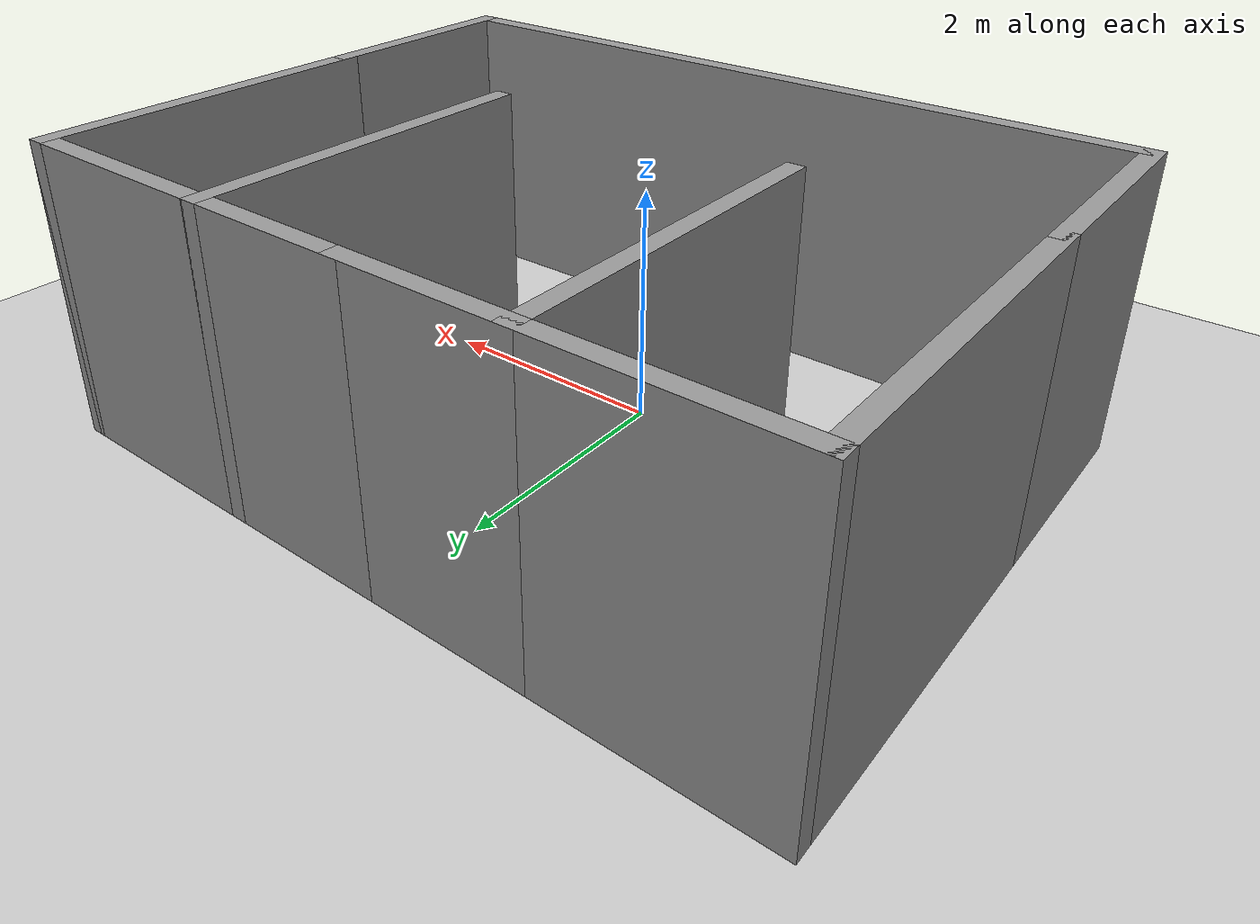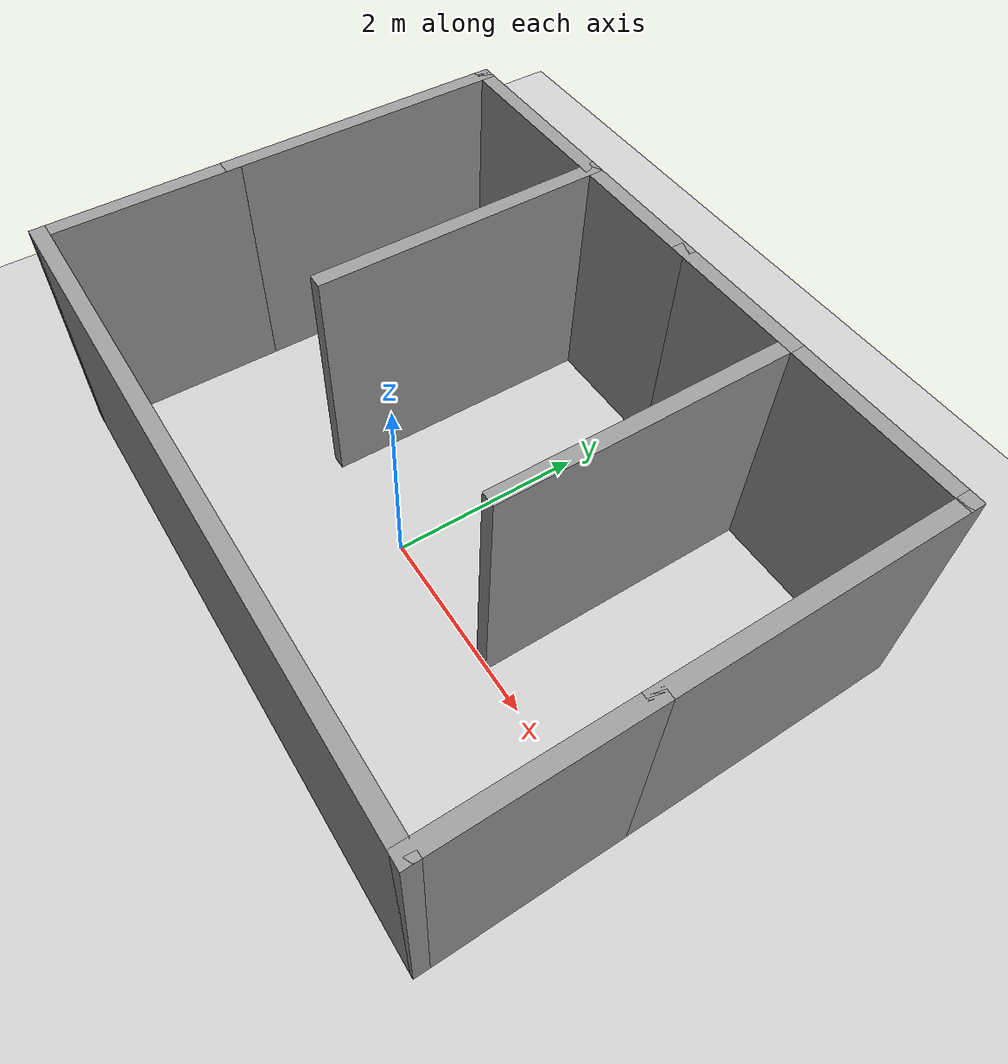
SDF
<sdf version="1.6">
 <world name="default">
  <light name="sun" type="directional">
   <pose>0 0 10 0 -0 0</pose>
   <diffuse>0.8 0.8 0.8 1</diffuse>
   <specular>0.2 0.2 0.2 1</specular>
   <attenuation>
    <range>1000</range>
    <constant>0.9</constant>
    <linear>0.01</linear>
    <quadratic>0.001</quadratic>
   </attenuation>
   <direction>-0.5 0.1 -0.9</direction>
  </light>
  <model name="ground_plane">
   <static>1</static>
   <link name="link">
    <collision name="collision">
     <geometry><plane><normal>0 0 1</normal><size>100 100</size></plane></geometry>
     <surface>
      <contact><collide_bitmask>65535</collide_bitmask></contact>
      <friction><ode><mu>100</mu><mu2>50</mu2></ode></friction>
     </surface>
    </collision>
    <visual name="visual">
     <cast_shadows>0</cast_shadows>
     <geometry><plane><normal>0 0 1</normal><size>100 100</size></plane></geometry>
     <material>
      <script><uri>file://media/materials/scripts/gazebo.material</uri><name>Gazebo/Grey</name></script>
     </material>
    </visual>
   </link>
  </model>
  <gravity>0 0 -9.8</gravity>
  <magnetic_field>6e-06 2.3e-05 -4.2e-05</magnetic_field>
  <atmosphere type="adiabatic"/>
  <physics name="default_physics" default="0" type="ode">
   <max_step_size>0.001</max_step_size>
   <real_time_factor>1</real_time_factor>
   <real_time_update_rate>1000</real_time_update_rate>
  </physics>
  <scene><ambient>0.4 0.4 0.4 1</ambient><background>0.7 0.7 0.7 1</background><shadows>1</shadows></scene>
  <spherical_coordinates>
   <surface_model>EARTH_WGS84</surface_model>
   <latitude_deg>0</latitude_deg>
   <longitude_deg>0</longitude_deg>
   <elevation>0</elevation>
   <heading_deg>0</heading_deg>
  </spherical_coordinates>
  <model name="wall.world">
   <pose>0.1 0.56 0 0 -0 0</pose>
   <link name="Wall_11">
    <collision name="Wall_11_Collision">
     <geometry><box><size>1.5 0.15 2.5</size></box></geometry>
     <pose>0 0 1.25 0 -0 0</pose>
    </collision>
    <visual name="Wall_11_Visual">
     <pose>0 0 1.25 0 -0 0</pose>
     <geometry><box><size>1.5 0.15 2.5</size></box></geometry>
     <material>
      <script><uri>file://media/materials/scripts/gazebo.material</uri><name>Gazebo/Grey</name></script>
      <ambient>1 1 1 1</ambient>
     </material>
     <meta><layer>0</layer></meta>
    </visual>
    <pose>-0.675 2.35 0 0 -0 3.14159</pose>
   </link>
   <link name="Wall_12">
    <collision name="Wall_12_Collision">
     <geometry><box><size>3 0.15 2.5</size></box></geometry>
     <pose>0 0 1.25 0 -0 0</pose>
    </collision>
    <visual name="Wall_12_Visual">
     <pose>0 0 1.25 0 -0 0</pose>
     <geometry><box><size>3 0.15 2.5</size></box></geometry>
     <material>
      <script><uri>file://media/materials/scripts/gazebo.material</uri><name>Gazebo/Grey</name></script>
      <ambient>1 1 1 1</ambient>
     </material>
     <meta><layer>0</layer></meta>
    </visual>
    <pose>-1.35 0.925 0 0 -0 -1.5708</pose>
   </link>
   <link name="Wall_14">
    <collision name="Wall_14_Collision">
     <geometry><box><size>1.5 0.15 2.5</size></box></geometry>
     <pose>0 0 1.25 0 -0 0</pose>
    </collision>
    <visual name="Wall_14_Visual">
     <pose>0 0 1.25 0 -0 0</pose>
     <geometry><box><size>1.5 0.15 2.5</size></box></geometry>
     <material>
      <script><uri>file://media/materials/scripts/gazebo.material</uri><name>Gazebo/Grey</name></script>
      <ambient>1 1 1 1</ambient>
     </material>
     <meta><layer>0</layer></meta>
    </visual>
    <pose>0.675 2.35 0 0 -0 0</pose>
   </link>
   <link name="Wall_15">
    <collision name="Wall_15_Collision">
     <geometry><box><size>3 0.15 2.5</size></box></geometry>
     <pose>0 0 1.25 0 -0 0</pose>
    </collision>
    <visual name="Wall_15_Visual">
     <pose>0 0 1.25 0 -0 0</pose>
     <geometry><box><size>3 0.15 2.5</size></box></geometry>
     <material>
      <script><uri>file://media/materials/scripts/gazebo.material</uri><name>Gazebo/Grey</name></script>
      <ambient>1 1 1 1</ambient>
     </material>
     <meta><layer>0</layer></meta>
    </visual>
    <pose>1.35 0.925 0 0 -0 -1.5708</pose>
   </link>
   <link name="Wall_17">
    <collision name="Wall_17_Collision">
     <geometry><box><size>2 0.15 2.5</size></box></geometry>
     <pose>0 0 1.25 0 -0 0</pose>
    </collision>
    <visual name="Wall_17_Visual">
     <pose>0 0 1.25 0 -0 0</pose>
     <geometry><box><size>2 0.15 2.5</size></box></geometry>
     <material>
      <script><uri>file://media/materials/scripts/gazebo.material</uri><name>Gazebo/Grey</name></script>
      <ambient>1 1 1 1</ambient>
     </material>
     <meta><layer>0</layer></meta>
    </visual>
    <pose>2.275 2.35 0 0 -0 0</pose>
   </link>
   <link name="Wall_18">
    <collision name="Wall_18_Collision">
     <geometry><box><size>3 0.15 2.5</size></box></geometry>
     <pose>0 0 1.25 0 -0 0</pose>
    </collision>
    <visual name="Wall_18_Visual">
     <pose>0 0 1.25 0 -0 0</pose>
     <geometry><box><size>3 0.15 2.5</size></box></geometry>
     <material>
      <script><uri>file://media/materials/scripts/gazebo.material</uri><name>Gazebo/Grey</name></script>
      <ambient>1 1 1 1</ambient>
     </material>
     <meta><layer>0</layer></meta>
    </visual>
    <pose>3.2 0.925 0 0 -0 -1.5708</pose>
   </link>
   <link name="Wall_20">
    <collision name="Wall_20_Collision">
     <geometry><box><size>2 0.15 2.5</size></box></geometry>
     <pose>0 0 1.25 0 -0 0</pose>
    </collision>
    <visual name="Wall_20_Visual">
     <pose>0 0 1.25 0 -0 0</pose>
     <geometry><box><size>2 0.15 2.5</size></box></geometry>
     <material>
      <script><uri>file://media/materials/scripts/gazebo.material</uri><name>Gazebo/Grey</name></script>
      <ambient>1 1 1 1</ambient>
     </material>
     <meta><layer>0</layer></meta>
    </visual>
    <pose>-2.275 2.35 0 0 -0 3.14159</pose>
   </link>
   <link name="Wall_21">
    <collision name="Wall_21_Collision">
     <geometry><box><size>3 0.15 2.5</size></box></geometry>
     <pose>0 0 1.25 0 -0 0</pose>
    </collision>
    <visual name="Wall_21_Visual">
     <pose>0 0 1.25 0 -0 0</pose>
     <geometry><box><size>3 0.15 2.5</size></box></geometry>
     <material>
      <script><uri>file://media/materials/scripts/gazebo.material</uri><name>Gazebo/Grey</name></script>
      <ambient>1 1 1 1</ambient>
     </material>
     <meta><layer>0</layer></meta>
    </visual>
    <pose>-3.2 0.925 0 0 -0 -1.5708</pose>
   </link>
   <link name="Wall_23">
    <collision name="Wall_23_Collision">
     <geometry><box><size>2 0.15 2.5</size></box></geometry>
     <pose>0 0 1.25 0 -0 0</pose>
    </collision>
    <visual name="Wall_23_Visual">
     <pose>0 0 1.25 0 -0 0</pose>
     <geometry><box><size>2 0.15 2.5</size></box></geometry>
     <material>
      <script><uri>file://media/materials/scripts/gazebo.material</uri><name>Gazebo/Grey</name></script>
      <ambient>1 1 1 1</ambient>
     </material>
     <meta><layer>0</layer></meta>
    </visual>
    <pose>-3.2 -1.425 0 0 -0 -1.5708</pose>
   </link>
   <link name="Wall_25">
    <collision name="Wall_25_Collision">
     <geometry><box><size>2 0.15 2.5</size></box></geometry>
     <pose>0 0 1.25 0 -0 0</pose>
    </collision>
    <visual name="Wall_25_Visual">
     <pose>0 0 1.25 0 -0 0</pose>
     <geometry><box><size>2 0.15 2.5</size></box></geometry>
     <material>
      <script><uri>file://media/materials/scripts/gazebo.material</uri><name>Gazebo/Grey</name></script>
      <ambient>1 1 1 1</ambient>
     </material>
     <meta><layer>0</layer></meta>
    </visual>
    <pose>3.2 -1.425 0 0 -0 -1.5708</pose>
   </link>
   <link name="Wall_27">
    <collision name="Wall_27_Collision">
     <geometry><box><size>6.55 0.15 2.5</size></box></geometry>
     <pose>0 0 1.25 0 -0 0</pose>
    </collision>
    <visual name="Wall_27_Visual">
     <pose>0 0 1.25 0 -0 0</pose>
     <geometry><box><size>6.55 0.15 2.5</size></box></geometry>
     <material>
      <script><uri>file://media/materials/scripts/gazebo.material</uri><name>Gazebo/Grey</name></script>
      <ambient>1 1 1 1</ambient>
     </material>
     <meta><layer>0</layer></meta>
    </visual>
    <pose>-0 -2.35 0 0 -0 0</pose>
   </link>
   <static>1</static>
  </model>
 </world>
</sdf>
